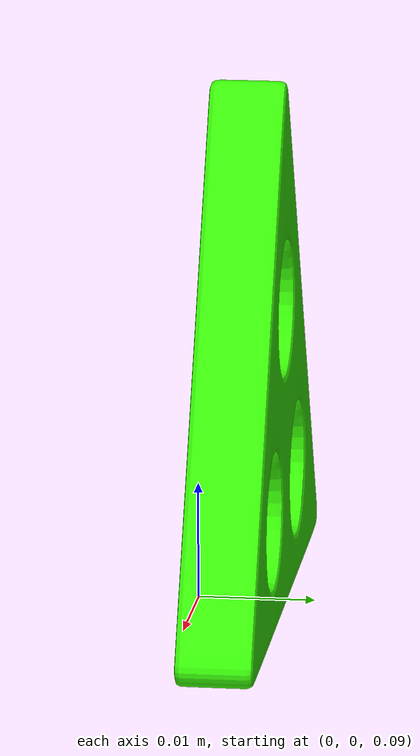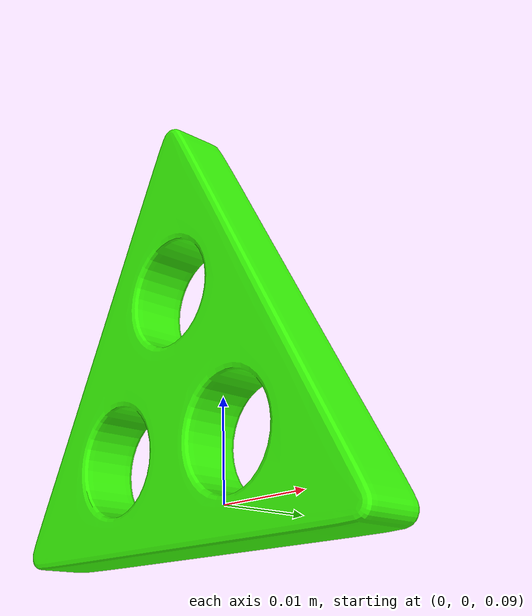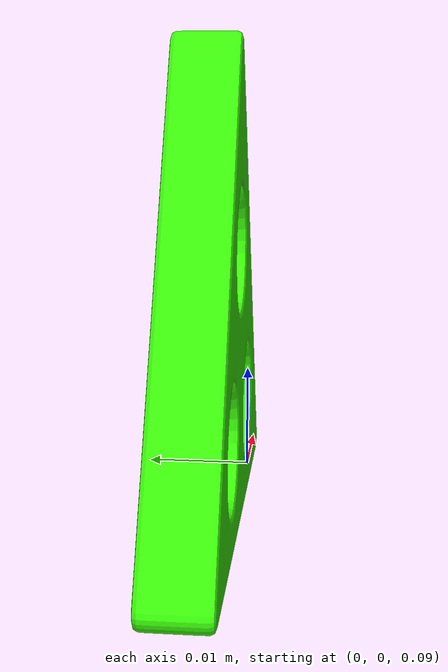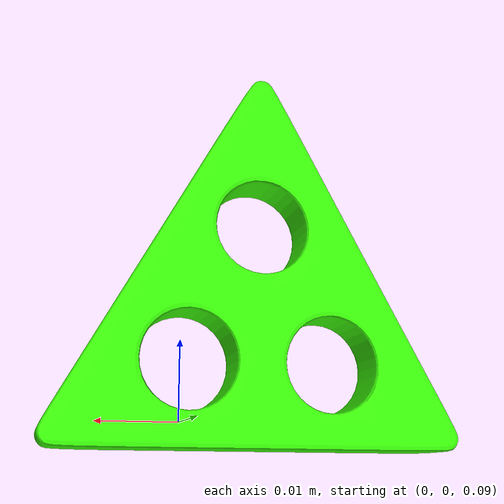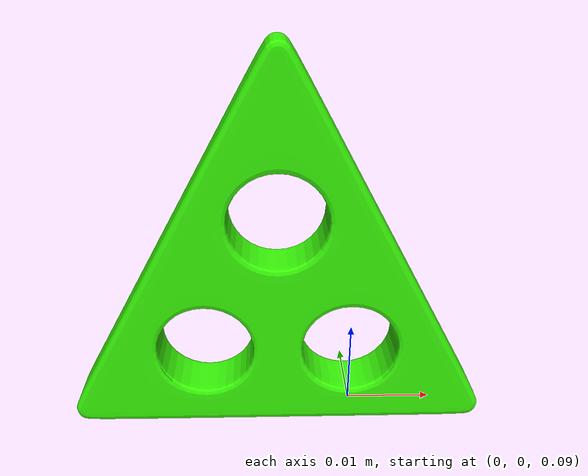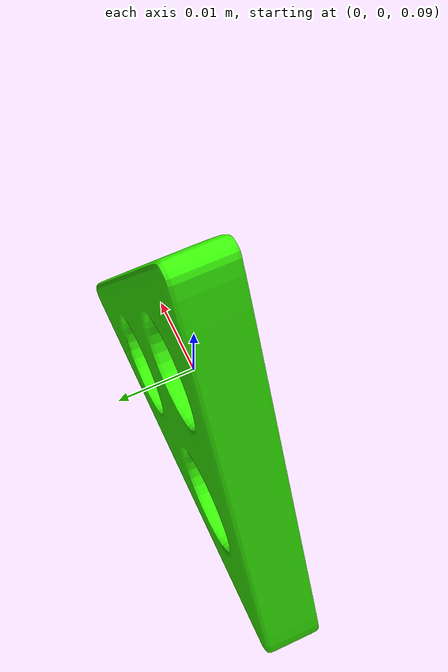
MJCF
<mujoco model="triangle">
  <compiler angle="radian" meshdir="assets" texturedir="assets" autolimits="true"/>
  <default>
    <default class="visual">
      <geom group="2" type="mesh" contype="0" conaffinity="0"/>
    </default>
    <default class="collision">
      <geom group="3" type="mesh" mass="0.4" friction="0 0 0" solimp="0.95 0.99 0.001" solref="0.004 1"/>
    </default>
    <default class="target_area">
      <geom group="3" type="mesh" contype="0" conaffinity="0" friction="0 0 0" solimp="0.99 0.99 0.000001" solref="0.000001 1"/>
    </default>
  </default>
  <asset>
    <material name="Color_Green" specular="0.5" shininess="0.25" rgba="0.226407 0.992449 0.027809 1.000000"/>
    <mesh file="triangle.obj"/>
    <mesh file="triangle_collision_0.obj"/>
    <mesh file="triangle_collision_1.obj"/>
    <mesh file="triangle_collision_2.obj"/>
    <mesh file="triangle_collision_3.obj"/>
    <mesh file="triangle_collision_4.obj"/>
    <mesh file="triangle_collision_5.obj"/>
    <mesh file="triangle_collision_6.obj"/>
    <mesh file="triangle_collision_7.obj"/>
    <mesh file="triangle_collision_8.obj"/>
    <mesh file="triangle_collision_9.obj"/>
    <mesh file="triangle_collision_10.obj"/>
    <mesh file="triangle_collision_11.obj"/>
    <mesh file="triangle_collision_12.obj"/>
    <mesh file="triangle_collision_13.obj"/>
    <mesh file="triangle_collision_14.obj"/>
    <mesh file="triangle_collision_15.obj"/>
    <mesh file="triangle_collision_16.obj"/>
    <mesh file="triangle_collision_17.obj"/>
    <mesh file="triangle_collision_18.obj"/>
    <mesh file="triangle_collision_19.obj"/>
    <mesh file="triangle_collision_20.obj"/>
    <mesh file="triangle_collision_21.obj"/>
    <mesh file="triangle_collision_22.obj"/>
    <mesh file="triangle_collision_23.obj"/>
    <mesh file="triangle_collision_24.obj"/>
    <mesh file="triangle_collision_25.obj"/>
    <mesh file="triangle_collision_26.obj"/>
    <mesh file="triangle_collision_27.obj"/>
    <mesh file="triangle_collision_28.obj"/>
    <mesh file="triangle_collision_29.obj"/>
    <mesh file="triangle_collision_30.obj"/>
    <mesh file="triangle_collision_31.obj"/>
    <mesh file="triangle_collision_32.obj"/>
    <mesh file="triangle_collision_33.obj"/>
    <mesh file="triangle_collision_34.obj"/>
    <mesh file="triangle_collision_35.obj"/>
    <mesh file="triangle_collision_36.obj"/>
    <mesh file="triangle_collision_37.obj"/>
    <mesh file="triangle_collision_38.obj"/>
    <mesh file="triangle_collision_39.obj"/>
    <mesh file="triangle_collision_40.obj"/>
    <mesh file="triangle_collision_41.obj"/>
    <mesh file="triangle_collision_42.obj"/>
    <mesh file="triangle_collision_43.obj"/>
    <mesh file="triangle_collision_44.obj"/>
    <mesh file="triangle_collision_45.obj"/>
    <mesh file="triangle_collision_46.obj"/>
    <mesh file="triangle_collision_47.obj"/>
    <mesh file="triangle_collision_48.obj"/>
    <mesh file="triangle_collision_49.obj"/>
    <mesh file="triangle_collision_50.obj"/>
    <mesh file="triangle_collision_51.obj"/>
    <mesh file="triangle_collision_52.obj"/>
    <mesh file="triangle_collision_53.obj"/>
    <mesh file="triangle_collision_54.obj"/>
    <mesh file="triangle_collision_55.obj"/>
    <mesh file="triangle_collision_56.obj"/>
    <mesh file="triangle_collision_57.obj"/>
    <mesh file="triangle_collision_58.obj"/>
    <mesh file="triangle_collision_59.obj"/>
    <mesh file="triangle_collision_60.obj"/>
    <mesh file="triangle_collision_61.obj"/>
    <mesh file="triangle_collision_62.obj"/>
    <mesh file="triangle_collision_63.obj"/>
    <mesh file="triangle_collision_64.obj"/>
    <mesh file="triangle_collision_65.obj"/>
    <mesh file="triangle_collision_66.obj"/>
    <mesh file="triangle_collision_67.obj"/>
    <mesh file="triangle_collision_68.obj"/>
    <mesh file="triangle_collision_69.obj"/>
    <mesh file="triangle_collision_70.obj"/>
    <mesh file="triangle_collision_71.obj"/>
    <mesh file="triangle_collision_72.obj"/>
    <mesh file="triangle_collision_73.obj"/>
    <mesh file="triangle_collision_74.obj"/>
    <mesh file="triangle_collision_75.obj"/>
    <mesh file="triangle_collision_76.obj"/>
    <mesh file="triangle_collision_77.obj"/>
    <mesh file="triangle_collision_78.obj"/>
    <mesh file="triangle_collision_79.obj"/>
    <mesh file="triangle_collision_80.obj"/>
    <mesh file="triangle_collision_81.obj"/>
    <mesh file="triangle_collision_82.obj"/>
    <mesh file="triangle_collision_83.obj"/>
    <mesh file="triangle_collision_84.obj"/>
    <mesh file="triangle_collision_85.obj"/>
    <mesh file="triangle_collision_86.obj"/>
    <mesh file="triangle_collision_87.obj"/>
    <mesh file="triangle_collision_88.obj"/>
    <mesh file="triangle_collision_89.obj"/>
    <mesh file="triangle_collision_90.obj"/>
    <mesh file="triangle_collision_91.obj"/>
    <mesh file="triangle_collision_92.obj"/>
    <mesh file="triangle_collision_93.obj"/>
    <mesh file="triangle_collision_94.obj"/>
    <mesh file="triangle_collision_95.obj"/>
    <mesh file="triangle_collision_96.obj"/>
    <mesh file="triangle_collision_97.obj"/>
    <mesh file="triangle_collision_98.obj"/>
    <mesh file="triangle_collision_99.obj"/>
    <mesh file="triangle_collision_100.obj"/>
    <mesh file="triangle_collision_101.obj"/>
    <mesh file="triangle_collision_102.obj"/>
    <mesh file="triangle_collision_103.obj"/>
    <mesh file="triangle_collision_104.obj"/>
    <mesh file="triangle_collision_105.obj"/>
    <mesh file="triangle_collision_106.obj"/>
    <mesh file="triangle_collision_107.obj"/>
    <mesh file="triangle_collision_108.obj"/>
    <mesh file="triangle_collision_109.obj"/>
    <mesh file="triangle_collision_110.obj"/>
    <mesh file="triangle_collision_111.obj"/>
    <mesh file="triangle_collision_112.obj"/>
    <mesh file="triangle_collision_113.obj"/>
    <mesh file="triangle_collision_114.obj"/>
    <mesh file="triangle_collision_115.obj"/>
    <mesh file="triangle_collision_116.obj"/>
    <mesh file="triangle_collision_117.obj"/>
    <mesh file="triangle_collision_118.obj"/>
    <mesh file="triangle_collision_119.obj"/>
    <mesh file="triangle_collision_120.obj"/>
    <mesh file="triangle_collision_121.obj"/>
    <mesh file="triangle_collision_122.obj"/>
    <mesh file="triangle_collision_123.obj"/>
    <mesh file="triangle_collision_124.obj"/>
    <mesh file="triangle_collision_125.obj"/>
    <mesh file="triangle_collision_126.obj"/>
    <mesh file="triangle_collision_127.obj"/>
    <mesh file="triangle_collision_128.obj"/>
    <mesh file="triangle_collision_129.obj"/>
    <mesh file="triangle_collision_130.obj"/>
    <mesh file="triangle_collision_131.obj"/>
    <mesh file="triangle_collision_132.obj"/>
    <mesh file="triangle_collision_133.obj"/>
    <mesh file="triangle_collision_134.obj"/>
    <mesh file="triangle_collision_135.obj"/>
    <mesh file="triangle_collision_136.obj"/>
    <mesh file="triangle_collision_137.obj"/>
  </asset>
  <worldbody>
    <body name="triangle">
      <body name="hole_site">
        <geom name="hole_site_1" type="cylinder" size=".006 .002 .04" pos="-0.0085 0.0035 0.113" euler="1.5708 0 0" rgba="1 0 0 0" class="target_area"/>
        <geom name="hole_site_2" type="cylinder" size=".006 .002 .04" pos="-0.017 0.0035 0.097" euler="1.5708 0 0" rgba="0 1 0 0" class="target_area"/>
        <geom name="hole_site_3" type="cylinder" size=".006 .002 .04" pos="0 0.0035 0.096" euler="1.5708 0 0" rgba="0 0 1 0" class="target_area"/>
      </body>

      <geom material="Color_Green" mesh="triangle" class="visual"/>
      <geom mesh="triangle_collision_0" rgba="0.3596591068263021 0.4340636944349152 0.4398362518165728 1" class="collision"/>
      <geom mesh="triangle_collision_1" rgba="0.7856920877782013 0.37536418874847577 0.21166891802754229 1" class="collision"/>
      <geom mesh="triangle_collision_2" rgba="0.5692621938478664 0.6721339611027265 0.9581524850580633 1" class="collision"/>
      <geom mesh="triangle_collision_3" rgba="0.20208788139215272 0.4416955734633107 0.7267340379388123 1" class="collision"/>
      <geom mesh="triangle_collision_4" rgba="0.11844949232611268 0.7025250610362396 0.7773577691349625 1" class="collision"/>
      <geom mesh="triangle_collision_5" rgba="0.12670805218088244 0.5297746548895202 0.799454884458804 1" class="collision"/>
      <geom mesh="triangle_collision_6" rgba="0.7139446529092661 0.16685316781662973 0.5769302800563593 1" class="collision"/>
      <geom mesh="triangle_collision_7" rgba="0.08113439629318608 0.6472852433639534 0.23229964775740086 1" class="collision"/>
      <geom mesh="triangle_collision_8" rgba="0.19278751593331345 0.023877570323838415 0.534134421168429 1" class="collision"/>
      <geom mesh="triangle_collision_9" rgba="0.6862422569817552 0.3220564627853103 0.4930502924583984 1" class="collision"/>
      <geom mesh="triangle_collision_10" rgba="0.8494678656939182 0.262039708205695 0.610297921463898 1" class="collision"/>
      <geom mesh="triangle_collision_11" rgba="0.5613825261088845 0.8604076133273806 0.38926635744772 1" class="collision"/>
      <geom mesh="triangle_collision_12" rgba="0.6505088574385907 0.04528072095213154 0.5989935658977068 1" class="collision"/>
      <geom mesh="triangle_collision_13" rgba="0.519547011962187 0.001912179814413384 0.08650171231748838 1" class="collision"/>
      <geom mesh="triangle_collision_14" rgba="0.7100000564872502 0.10162997101532789 0.019471706352686358 1" class="collision"/>
      <geom mesh="triangle_collision_15" rgba="0.7550943753879773 0.3007998967719505 0.7142072004528782 1" class="collision"/>
      <geom mesh="triangle_collision_16" rgba="0.5539967665198691 0.08755922237820202 0.6603976182417813 1" class="collision"/>
      <geom mesh="triangle_collision_17" rgba="0.9115335237916884 0.9307975894043108 0.43910762091396793 1" class="collision"/>
      <geom mesh="triangle_collision_18" rgba="0.5128959147079223 0.41269617989122986 0.7674096560591812 1" class="collision"/>
      <geom mesh="triangle_collision_19" rgba="0.6851358361396824 0.48380011589691296 0.9647937805459516 1" class="collision"/>
      <geom mesh="triangle_collision_20" rgba="0.044550667673273425 0.9931054197588581 0.1116418394737706 1" class="collision"/>
      <geom mesh="triangle_collision_21" rgba="0.7905298032554546 0.013964820688281088 0.9506952092702247 1" class="collision"/>
      <geom mesh="triangle_collision_22" rgba="0.23442858148328372 0.3292863628700252 0.21049809299399425 1" class="collision"/>
      <geom mesh="triangle_collision_23" rgba="0.3538536608559041 0.3491755622422441 0.7716628453488091 1" class="collision"/>
      <geom mesh="triangle_collision_24" rgba="0.7615220382785757 0.053350595017523816 0.3407362287139726 1" class="collision"/>
      <geom mesh="triangle_collision_25" rgba="0.8271903677601471 0.7288938638216433 0.9717216178875905 1" class="collision"/>
      <geom mesh="triangle_collision_26" rgba="0.5299554296467082 0.40122206545500283 0.5597740427775288 1" class="collision"/>
      <geom mesh="triangle_collision_27" rgba="0.2867007264716639 0.03915037718263581 0.4297937959509758 1" class="collision"/>
      <geom mesh="triangle_collision_28" rgba="0.7255540340861 0.8760175341027413 0.1526863989460132 1" class="collision"/>
      <geom mesh="triangle_collision_29" rgba="0.7888761620069386 0.38006151750533623 0.060027303408088706 1" class="collision"/>
      <geom mesh="triangle_collision_30" rgba="0.2386687333631652 0.8530460695616084 0.4661285164152249 1" class="collision"/>
      <geom mesh="triangle_collision_31" rgba="0.919305490376182 0.14419907634258167 0.4781114316551168 1" class="collision"/>
      <geom mesh="triangle_collision_32" rgba="0.8607015548917389 0.11304799220927686 0.2705748483532311 1" class="collision"/>
      <geom mesh="triangle_collision_33" rgba="0.11359530170796306 0.30956189649971644 0.033237849839630185 1" class="collision"/>
      <geom mesh="triangle_collision_34" rgba="0.9390282800032503 0.4150599550644104 0.25357544017614164 1" class="collision"/>
      <geom mesh="triangle_collision_35" rgba="0.818112868607786 0.2081006320690365 0.9891328479154224 1" class="collision"/>
      <geom mesh="triangle_collision_36" rgba="0.9211786098490139 0.09350732351473823 0.8467412093568839 1" class="collision"/>
      <geom mesh="triangle_collision_37" rgba="0.29600791330611387 0.6198162447829138 0.09043946189546903 1" class="collision"/>
      <geom mesh="triangle_collision_38" rgba="0.727342689782941 0.13944624015170548 0.341391258114738 1" class="collision"/>
      <geom mesh="triangle_collision_39" rgba="0.12976796416255731 0.16135376079853836 0.9924816566305262 1" class="collision"/>
      <geom mesh="triangle_collision_40" rgba="0.2580125205816842 0.01779205854045307 0.35724698831708157 1" class="collision"/>
      <geom mesh="triangle_collision_41" rgba="0.8532912373163124 0.6921221653707482 0.3232256083750925 1" class="collision"/>
      <geom mesh="triangle_collision_42" rgba="0.590646944150937 0.6280693632880768 0.5435732202945892 1" class="collision"/>
      <geom mesh="triangle_collision_43" rgba="0.8403555664164797 0.7832329888658968 0.930140302455638 1" class="collision"/>
      <geom mesh="triangle_collision_44" rgba="0.5365396649879156 0.24017106825765078 0.53097432354185 1" class="collision"/>
      <geom mesh="triangle_collision_45" rgba="0.3477942629297255 0.6822153224079296 0.16918916403592865 1" class="collision"/>
      <geom mesh="triangle_collision_46" rgba="0.5114930811684651 0.1820342325591191 0.4256973128748809 1" class="collision"/>
      <geom mesh="triangle_collision_47" rgba="0.6594662011977607 0.14885136041578084 0.9024971234655756 1" class="collision"/>
      <geom mesh="triangle_collision_48" rgba="0.864460874587725 0.637692760347953 0.7456559793198368 1" class="collision"/>
      <geom mesh="triangle_collision_49" rgba="0.5961953324588191 0.056893707744205546 0.645200990560258 1" class="collision"/>
      <geom mesh="triangle_collision_50" rgba="0.6151335410223485 0.8055725691249435 0.7889970454713175 1" class="collision"/>
      <geom mesh="triangle_collision_51" rgba="0.8924784541468738 0.9241076253769521 0.7996676229060414 1" class="collision"/>
      <geom mesh="triangle_collision_52" rgba="0.06795164372447371 0.8149932059414591 0.15910183823634727 1" class="collision"/>
      <geom mesh="triangle_collision_53" rgba="0.26058048053923244 0.45632918336243133 0.25214285877424747 1" class="collision"/>
      <geom mesh="triangle_collision_54" rgba="0.13765943210290377 0.496977831387006 0.7610961579768964 1" class="collision"/>
      <geom mesh="triangle_collision_55" rgba="0.9722794929712115 0.5724649877144451 0.5508856677885775 1" class="collision"/>
      <geom mesh="triangle_collision_56" rgba="0.17040813066191351 0.10679157127015482 0.07024327309366707 1" class="collision"/>
      <geom mesh="triangle_collision_57" rgba="0.5597202003036906 0.18369499338305095 0.3207257025360122 1" class="collision"/>
      <geom mesh="triangle_collision_58" rgba="0.6507196995344247 0.7855066598672527 0.2528123317492622 1" class="collision"/>
      <geom mesh="triangle_collision_59" rgba="0.056567802412562096 0.9221641247741034 0.32102583258447037 1" class="collision"/>
      <geom mesh="triangle_collision_60" rgba="0.9242357286700102 0.46252118577767676 0.4563354344269164 1" class="collision"/>
      <geom mesh="triangle_collision_61" rgba="0.5541172961567103 0.28964893259388735 0.26185777151751166 1" class="collision"/>
      <geom mesh="triangle_collision_62" rgba="0.19967305160638704 0.3075991848304792 0.5578081965204309 1" class="collision"/>
      <geom mesh="triangle_collision_63" rgba="0.42870316087574456 0.16304892696592332 0.9644238895144761 1" class="collision"/>
      <geom mesh="triangle_collision_64" rgba="0.2607151981175849 0.6924324976023806 0.9597030240693337 1" class="collision"/>
      <geom mesh="triangle_collision_65" rgba="0.8890455320350706 0.8986716898879145 0.2634662608980961 1" class="collision"/>
      <geom mesh="triangle_collision_66" rgba="0.04963857261883875 0.9655437813894506 0.341865885028649 1" class="collision"/>
      <geom mesh="triangle_collision_67" rgba="0.3851370144991393 0.12931138347493298 0.2239100335422548 1" class="collision"/>
      <geom mesh="triangle_collision_68" rgba="0.6409840683137527 0.5272613598101871 0.6411095257724907 1" class="collision"/>
      <geom mesh="triangle_collision_69" rgba="0.23254105975075778 0.3396496674978172 0.5109527160646993 1" class="collision"/>
      <geom mesh="triangle_collision_70" rgba="0.4356199370308741 0.5006408254759835 0.9019868939340658 1" class="collision"/>
      <geom mesh="triangle_collision_71" rgba="0.8221744883019366 0.1961164178903806 0.34409268547224403 1" class="collision"/>
      <geom mesh="triangle_collision_72" rgba="0.6220104460519221 0.08300182247180299 0.6177484837771897 1" class="collision"/>
      <geom mesh="triangle_collision_73" rgba="0.40521637323341475 0.9634510340048402 0.7531737187817644 1" class="collision"/>
      <geom mesh="triangle_collision_74" rgba="0.635608287812684 0.6475227501590055 0.7596707208480261 1" class="collision"/>
      <geom mesh="triangle_collision_75" rgba="0.7503537555154204 0.14948825477970873 0.24936390382317908 1" class="collision"/>
      <geom mesh="triangle_collision_76" rgba="0.9395229537558725 0.1805372513899287 0.07824438249214638 1" class="collision"/>
      <geom mesh="triangle_collision_77" rgba="0.2391695134025702 0.7926930683375135 0.1713331188565802 1" class="collision"/>
      <geom mesh="triangle_collision_78" rgba="0.9494436220334749 0.6628676703255998 0.030698907042520762 1" class="collision"/>
      <geom mesh="triangle_collision_79" rgba="0.17008241450524464 0.9730613622195725 0.5064818052762319 1" class="collision"/>
      <geom mesh="triangle_collision_80" rgba="0.050983413217950635 0.020534679679919732 0.8932461738524032 1" class="collision"/>
      <geom mesh="triangle_collision_81" rgba="0.06203559943728798 0.736691037250256 0.8559796330842344 1" class="collision"/>
      <geom mesh="triangle_collision_82" rgba="0.8082351216423753 0.6471738504594889 0.20706661268594917 1" class="collision"/>
      <geom mesh="triangle_collision_83" rgba="0.01484453212683523 0.7049815823994182 0.1325506464978734 1" class="collision"/>
      <geom mesh="triangle_collision_84" rgba="0.4478837564347269 0.8349526930777866 0.6116600452309462 1" class="collision"/>
      <geom mesh="triangle_collision_85" rgba="0.9639490671941258 0.9424438908284786 0.7656612371269 1" class="collision"/>
      <geom mesh="triangle_collision_86" rgba="0.7952149705437067 0.3584443408851482 0.5133480414778744 1" class="collision"/>
      <geom mesh="triangle_collision_87" rgba="0.6119880956349467 0.5978056095308912 0.9578443745269124 1" class="collision"/>
      <geom mesh="triangle_collision_88" rgba="0.9309990106188979 0.1312045555822099 0.45522821847681627 1" class="collision"/>
      <geom mesh="triangle_collision_89" rgba="0.32136280222714153 0.7560309630294342 0.8072858880658227 1" class="collision"/>
      <geom mesh="triangle_collision_90" rgba="0.6137691877682246 0.03884471500532094 0.13302211679697418 1" class="collision"/>
      <geom mesh="triangle_collision_91" rgba="0.15146131820742514 0.9597031101765744 0.3251512371339741 1" class="collision"/>
      <geom mesh="triangle_collision_92" rgba="0.08885565188115607 0.7148042875904602 0.10001390478332817 1" class="collision"/>
      <geom mesh="triangle_collision_93" rgba="0.06330452747748716 0.605572266465998 0.7620091626377113 1" class="collision"/>
      <geom mesh="triangle_collision_94" rgba="0.5289023321302191 0.8797029039494526 0.3043312658244407 1" class="collision"/>
      <geom mesh="triangle_collision_95" rgba="0.6557348681241268 0.7028118467999948 0.07003603342377807 1" class="collision"/>
      <geom mesh="triangle_collision_96" rgba="0.9500755922837395 0.49665307771820155 0.4057194855860782 1" class="collision"/>
      <geom mesh="triangle_collision_97" rgba="0.04522518449609658 0.19134954816489036 0.15595956910552833 1" class="collision"/>
      <geom mesh="triangle_collision_98" rgba="0.3549916242020993 0.8586502633874588 0.8871618959448123 1" class="collision"/>
      <geom mesh="triangle_collision_99" rgba="0.8645905246227383 0.951926273076559 0.9434719516260732 1" class="collision"/>
      <geom mesh="triangle_collision_100" rgba="0.01945449139390787 0.6749474067405634 0.945228841544255 1" class="collision"/>
      <geom mesh="triangle_collision_101" rgba="0.2367196433875245 0.005451112215247078 0.9560830467293111 1" class="collision"/>
      <geom mesh="triangle_collision_102" rgba="0.20953086126406906 0.8854790395051565 0.49888749775547026 1" class="collision"/>
      <geom mesh="triangle_collision_103" rgba="0.0030725992966236237 0.5941395276883272 0.5667288968885421 1" class="collision"/>
      <geom mesh="triangle_collision_104" rgba="0.10102929823065143 0.830873941433149 0.40673367660912285 1" class="collision"/>
      <geom mesh="triangle_collision_105" rgba="0.9405977389014367 0.6230751747592917 0.6426031720169255 1" class="collision"/>
      <geom mesh="triangle_collision_106" rgba="0.6535263995797675 0.6734374606222358 0.646268151531432 1" class="collision"/>
      <geom mesh="triangle_collision_107" rgba="0.5344147961532396 0.22133425967389786 0.8194815171320827 1" class="collision"/>
      <geom mesh="triangle_collision_108" rgba="0.8247288595069285 0.36214454247660366 0.2938013580263621 1" class="collision"/>
      <geom mesh="triangle_collision_109" rgba="0.819391016490945 0.37866026738779324 0.06094262827874353 1" class="collision"/>
      <geom mesh="triangle_collision_110" rgba="0.92437478359448 0.2223144057449471 0.37866162321290187 1" class="collision"/>
      <geom mesh="triangle_collision_111" rgba="0.3276237579675627 0.18860109800045444 0.43336686767952703 1" class="collision"/>
      <geom mesh="triangle_collision_112" rgba="0.5455021569029793 0.5166438567347962 0.811916870610568 1" class="collision"/>
      <geom mesh="triangle_collision_113" rgba="0.666444260435585 0.14747816789916446 0.9422185456411075 1" class="collision"/>
      <geom mesh="triangle_collision_114" rgba="0.6803047622278438 0.8817752259514585 0.09930812837770497 1" class="collision"/>
      <geom mesh="triangle_collision_115" rgba="0.11627532254799866 0.2694298634574328 0.6594434667543397 1" class="collision"/>
      <geom mesh="triangle_collision_116" rgba="0.44371816143373644 0.7917273240167129 0.5798814965191607 1" class="collision"/>
      <geom mesh="triangle_collision_117" rgba="0.8630945898083495 0.20467898885824543 0.1472117721502848 1" class="collision"/>
      <geom mesh="triangle_collision_118" rgba="0.05816042772557839 0.8707741335189467 0.9669266475308532 1" class="collision"/>
      <geom mesh="triangle_collision_119" rgba="0.4812283544793041 0.7840030831109573 0.7974188000860221 1" class="collision"/>
      <geom mesh="triangle_collision_120" rgba="0.45170806815033326 0.2117120501764993 0.06478653537728907 1" class="collision"/>
      <geom mesh="triangle_collision_121" rgba="0.08765161991429027 0.3232136327595879 0.6371093860973903 1" class="collision"/>
      <geom mesh="triangle_collision_122" rgba="0.3411220242284836 0.42826483904111057 0.4997540115559649 1" class="collision"/>
      <geom mesh="triangle_collision_123" rgba="0.307499729346283 0.43707748384654266 0.8920888047982675 1" class="collision"/>
      <geom mesh="triangle_collision_124" rgba="0.9750011333147308 0.6896936334039128 0.7605417997824379 1" class="collision"/>
      <geom mesh="triangle_collision_125" rgba="0.9708450487090255 0.6254818831723795 0.4668116945412587 1" class="collision"/>
      <geom mesh="triangle_collision_126" rgba="0.05647392159822184 0.257337496814938 0.9844446998945731 1" class="collision"/>
      <geom mesh="triangle_collision_127" rgba="0.048461066964108346 0.7592676506474073 0.031723208534319314 1" class="collision"/>
      <geom mesh="triangle_collision_128" rgba="0.13460201556073093 0.040804909447201165 0.6348267917537704 1" class="collision"/>
      <geom mesh="triangle_collision_129" rgba="0.68333746940552 0.6316227937319555 0.25396584527310273 1" class="collision"/>
      <geom mesh="triangle_collision_130" rgba="0.44395381978647874 0.6364704711164377 0.49508584922477883 1" class="collision"/>
      <geom mesh="triangle_collision_131" rgba="0.41357727854071413 0.26336995101410154 0.6693874529338415 1" class="collision"/>
      <geom mesh="triangle_collision_132" rgba="0.08004295950106477 0.5103389420880915 0.7106699327692418 1" class="collision"/>
      <geom mesh="triangle_collision_133" rgba="0.8347907370372921 0.7024469243420798 0.7585314530112124 1" class="collision"/>
      <geom mesh="triangle_collision_134" rgba="0.4334395700496013 0.9183127814816913 0.3489528084910607 1" class="collision"/>
      <geom mesh="triangle_collision_135" rgba="0.005848357558370765 0.05540252481979746 0.6246660625349643 1" class="collision"/>
      <geom mesh="triangle_collision_136" rgba="0.36416886726336994 0.22438832700929912 0.7949335135740567 1" class="collision"/>
      <geom mesh="triangle_collision_137" rgba="0.4167515815642736 0.14923492403470773 0.689858612548287 1" class="collision"/>
    </body>
  </worldbody>
</mujoco>
